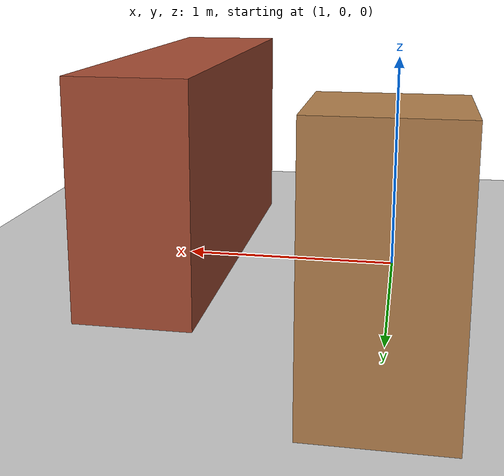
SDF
<?xml version="1.0" ?>
<sdf version="1.6">
  <world name="default">
    <include>
      <uri>model://sun</uri>
    </include>

    <include>
      <uri>model://ground_plane</uri>
    </include>

    <model name="box_obstacle_1">
      <pose>2.0 0 0.5 0 0 0</pose> <static>true</static>
      <link name="link">
        <collision name="collision">
          <geometry>
            <box>
              <size>0.5 2.0 1.0</size> </box>
          </geometry>
        </collision>
        <visual name="visual">
          <geometry>
            <box>
              <size>0.5 2.0 1.0</size>
            </box>
          </geometry>
          <material>
            <script>
              <uri>file://media/materials/scripts/gazebo.material</uri>
              <name>Gazebo/Bricks</name>
            </script>
          </material>
        </visual>
      </link>
    </model>

    <model name="box_obstacle_2">
      <pose>1.0 1.5 0.5 0 0 0</pose>
      <static>true</static>
      <link name="link">
        <collision name="collision">
          <geometry>
            <box>
              <size>0.5 0.5 1.0</size>
            </box>
          </geometry>
        </collision>
        <visual name="visual">
          <geometry>
            <box>
              <size>0.5 0.5 1.0</size>
            </box>
          </geometry>
          <material>
            <script>
              <name>Gazebo/Wood</name>
            </script>
          </material>
        </visual>
      </link>
    </model>

  </world>
</sdf>
